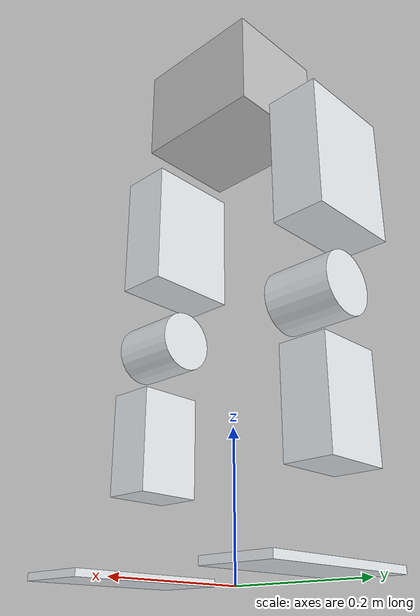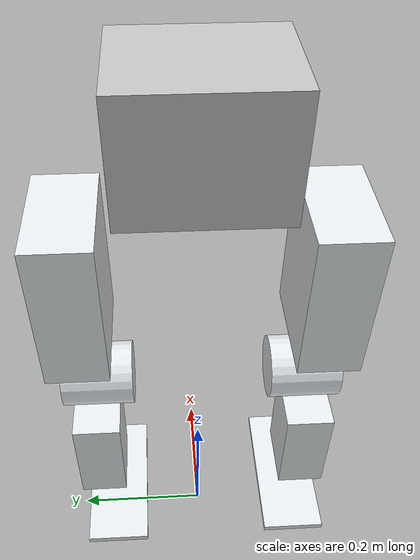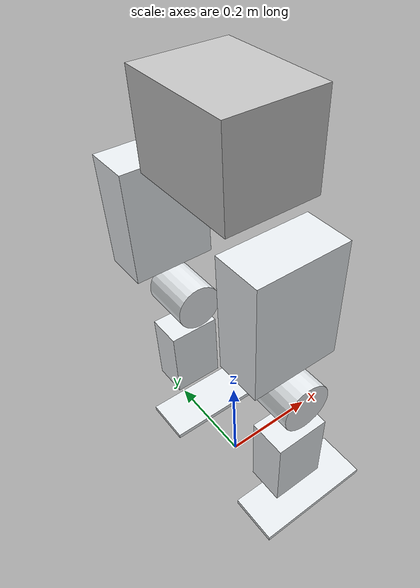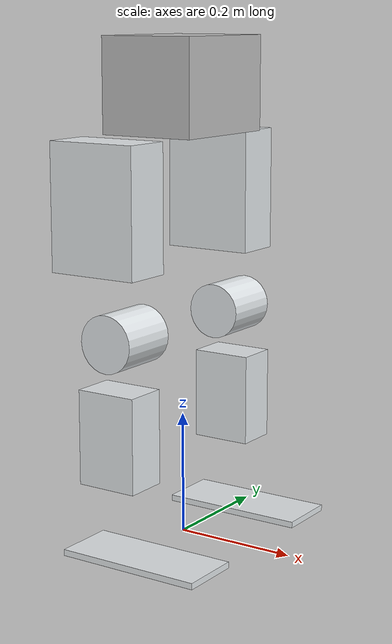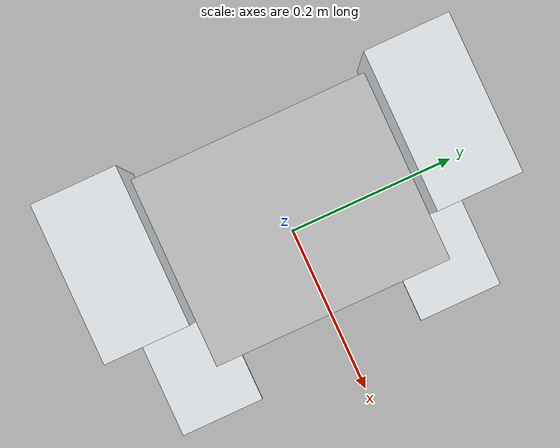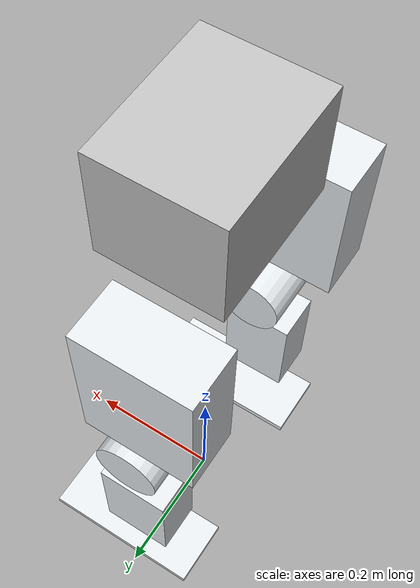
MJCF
<mujoco model="alexbotmini">
  <compiler angle="radian" meshdir="../../meshes/" />

    <default>
        <joint limited='true'/>
        <motor ctrllimited='true'/>
        <geom  condim='4' contype="1" conaffinity="15" solref='0.001 2' friction='0.9 0.2 0.2'/>
        <equality solref='0.001 2'/>
    </default>

  <asset>
    <mesh name="base_link"  file="base_link.STL"/>

    <mesh name="rightlink1" file="rightlink1.STL"/>
    <mesh name="rightlink2" file="rightlink2.STL"/>
    <mesh name="rightlink3" file="rightlink3.STL"/>
    <mesh name="rightlink4" file="rightlink4.STL"/>
    <mesh name="rightlink5" file="rightlink5.STL"/>
    <mesh name="rightlink6" file="rightlink6.STL"/>

    <mesh name="leftlink1" file="leftlink1.STL"/>
    <mesh name="leftlink2" file="leftlink2.STL"/>
    <mesh name="leftlink3" file="leftlink3.STL"/>
    <mesh name="leftlink4" file="leftlink4.STL"/>
    <mesh name="leftlink5" file="leftlink5.STL"/>
    <mesh name="leftlink6" file="leftlink6.STL"/>
  </asset>

  <worldbody>
    <body name="base_link" pos="0 0 0.73">
      <inertial pos="-0.012071 0.11411 -0.041034" quat="0.00146049 0.71148 0.00136861 0.702703" mass="4" diaginertia="0.00455766 0.0044348 0.00286634" />
      <joint name="floating_base_joint" type="free" limited="false"/>
      <site name='imu' size='0.01' pos='0.0 0 0.0' quat='1 0 0 0'/>

      <geom size="0.08 0.1 0.075" type="box" rgba="0.75294 0.75294 0.75294 1" />
      <body name="rightlink1" pos="0 -0.093 -0.078592" quat="0.707388 0 0 -0.706825">
        <inertial pos="0.020658 -0.02507 0.0001248" quat="0.696333 0.694566 0.128618 0.127104" mass="0.44393" diaginertia="0.000970786 0.000740389 0.000578604" />
        <joint name="rightjoint1" pos="0 0 0" axis="1 0 0" range="-1 1"  />
        <body name="rightlink2" pos="0.052 -0.081598 0.00059629">
          <inertial pos="0.0018778 0.014039 -0.072161" quat="0.702314 0.0670477 -0.0849537 0.703592" mass="0.95978" diaginertia="0.00354255 0.00345603 0.00116392" />
          <joint name="rightjoint2" pos="0 0 0" axis="0 -1 0" range="-0.2 0.3"  />
          <geom size="0.04 0.075 0.1" pos="0.01 0.05 -0.1" type="box" rgba="0.89804 0.91765 0.92941 1" />
          <body name="rightlink3" pos="0.0040538 0.077296 -0.1589">
            <inertial pos="0.0093209 -0.00020142 -0.048565" quat="0.999972 -0.000653563 -0.00409756 -0.00628251" mass="0.81499" diaginertia="0.00261135 0.00223234 0.0012056" />
            <joint name="rightjoint3" pos="0 0 0" axis="0 0 -1" range="-1 1"  />
            <geom size="0.045 0.05" pos="0 0 -0.14" quat="0.707388 0 0.706825 0" type="cylinder" rgba="0.89804 0.91765 0.92941 1" />
            <body name="rightlink4" pos="0.03062 -0.000827 -0.14126">
              <inertial pos="-0.014396 -0.0068674 -0.1157" quat="0.999041 -0.00580236 0.043287 0.00307627" mass="1.1424" diaginertia="0.00811334 0.00743073 0.00140954" />
              <joint name="rightjoint4" pos="0 0 0" axis="1 0 0" range="-1 1"  />
              <geom size="0.035 0.05 0.075" pos="-0.015 0 -0.15" type="box" rgba="0.89804 0.91765 0.92941 1" />
              <body name="rightlink5" pos="-0.017523 0.00046354 -0.29026">
                <inertial pos="-4.9539e-05 -0.007497 -0.00020767" quat="0.501167 0.502128 0.484844 0.511493" mass="0.017311" diaginertia="1.81605e-06 1.52904e-06 1.28001e-06" />
                <joint name="rightjoint5" pos="0 0 0" axis="1 0 0" range="-1 1"  />
                <body name="rightlink6">
                  <inertial pos="0.0012128 0.01635 -0.031449" quat="0.489396 0.495849 -0.513334 0.501113" mass="0.45" diaginertia="0.00163935 0.00145418 0.000236241" />
                  <joint name="rightjoint6" pos="0 0 0" axis="0 -1 0" range="-0.5 0.5"  />
                  <geom size="0.05 0.12 0.005" pos="0 0.045 -0.048" type="box" rgba="0.89804 0.91765 0.92941 1" />
                </body>
              </body>
            </body>
          </body>
        </body>
      </body>
      <body name="leftlink1" pos="0 0.095 -0.078592" quat="0.707388 0 0 -0.706825">
        <inertial pos="-0.020802 -0.02507 8.2908e-05" quat="0.697812 0.693053 -0.128288 -0.127582" mass="0.44393" diaginertia="0.000971118 0.000740166 0.000578487" />
        <joint name="leftjoint1" pos="0 0 0" axis="-1 0 0" range="-1 1"  />
        <body name="leftlink2" pos="-0.052 -0.0816 1.2733e-05">
          <inertial pos="0.0010709 0.01411 -0.072158" quat="0.703854 0.0715203 -0.0815398 0.702015" mass="0.95978" diaginertia="0.00354126 0.00345737 0.00116386" />
          <joint name="leftjoint2" pos="0 0 0" axis="0 -1 0" range="-0.3 0.2"  />
          <geom size="0.04 0.075 0.1" pos="-0.01 0.05 -0.1" type="box" rgba="0.89804 0.91765 0.92941 1" />
          <body name="leftlink3" pos="0.0023389 0.077519 -0.15883">
            <inertial pos="-0.0073431 -0.00047109 -0.049072" quat="0.999866 -0.00288943 -0.0160867 -0.00040898" mass="0.81627" diaginertia="0.00261146 0.00223573 0.00120231" />
            <joint name="leftjoint3" pos="0 0 0" axis="0 0 1" range="-1 1"  />
            <geom size="0.045 0.05" pos="0 0 -0.14" quat="0.707388 0 0.706825 0" type="cylinder" rgba="0.89804 0.91765 0.92941 1" />
            <body name="leftlink4" pos="-0.024903 -0.00058212 -0.14238">
              <inertial pos="0.019103 -0.009378 -0.11487" quat="0.997814 -0.0165531 -0.0638891 -0.00325479" mass="1.1424" diaginertia="0.00811438 0.00743073 0.0014085" />
              <joint name="leftjoint4" pos="0 0 0" axis="-1 0 0" range="-1 1"  />
              <geom size="0.035 0.05 0.075" pos="0.015 0 -0.15" type="box" rgba="0.89804 0.91765 0.92941 1" />
              <body name="leftlink5" pos="0.029296 -0.0057869 -0.28923">
                <inertial pos="4.339e-05 -0.0074995 -7.6174e-05" quat="0.499676 0.497426 0.49518 0.50763" mass="0.017311" diaginertia="1.81605e-06 1.52902e-06 1.28003e-06" />
                <joint name="leftjoint5" pos="0 0 0" axis="-1 0 0" range="-1 1"  />
                <body name="leftlink6">
                  <inertial pos="0.00011749 0.022694 -0.034357" quat="0.496133 0.497997 -0.50158 0.504251" mass="0.45" diaginertia="0.00252924 0.0022492 0.000344429" />
                  <joint name="leftjoint6" pos="0 0 0" axis="0 1 0" range="-0.5 0.5"  />
                  <geom size="0.05 0.12 0.005" pos="0 0.045 -0.048" type="box" rgba="0.89804 0.91765 0.92941 1" />
                </body>
              </body>
            </body>
          </body>
        </body>
      </body>
    </body>
  </worldbody>

  <actuator>
    <motor name="rightjoint1"  joint="rightjoint1" gear="1" ctrllimited="true" ctrlrange="-150 150"/>
    <motor name="rightjoint2"  joint="rightjoint2" gear="1" ctrllimited="true" ctrlrange="-80 80"/>
    <motor name="rightjoint3"  joint="rightjoint3" gear="1" ctrllimited="true" ctrlrange="-80 80"/>
    <motor name="rightjoint4"  joint="rightjoint4" gear="1" ctrllimited="true" ctrlrange="-150 150"/>
    <motor name="rightjoint5"  joint="rightjoint5" gear="1" ctrllimited="true" ctrlrange="-58.5 58.5"/>
    <motor name="rightjoint6"  joint="rightjoint6" gear="1" ctrllimited="true" ctrlrange="-58.5 58.5"/>

    <motor name="leftjoint1"  joint="leftjoint1" gear="1" ctrllimited="true" ctrlrange="-150 150"/>
    <motor name="leftjoint2"  joint="leftjoint2" gear="1" ctrllimited="true" ctrlrange="-80 80"/>
    <motor name="leftjoint3"  joint="leftjoint3" gear="1" ctrllimited="true" ctrlrange="-80 80"/>
    <motor name="leftjoint4"  joint="leftjoint4" gear="1" ctrllimited="true" ctrlrange="-150 150"/>
    <motor name="leftjoint5"  joint="leftjoint5" gear="1" ctrllimited="true" ctrlrange="-58.5 58.5"/>
    <motor name="leftjoint6"  joint="leftjoint6" gear="1" ctrllimited="true" ctrlrange="-58.5 58.5"/>
  </actuator>

    <sensor>
      <framequat     name='orientation' objtype='site' noise='0.001' objname='imu'/>
      <framepos     name='position' objtype='site' noise='0.001' objname='imu'/>
      <gyro          name='angular-velocity'    site='imu' noise='0.005' cutoff='34.9'/>
      <velocimeter   name='linear-velocity'     site='imu' noise='0.001' cutoff='30'/>
      <accelerometer name='linear-acceleration' site='imu' noise='0.005' cutoff='157'/>
      <magnetometer  name='magnetometer'        site='imu'/>
    </sensor>
</mujoco>
